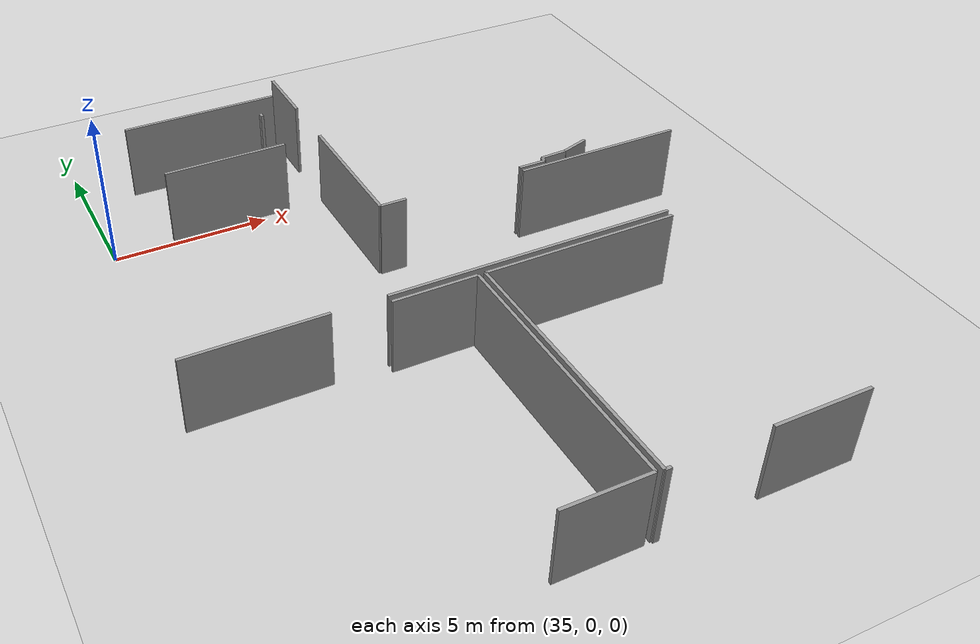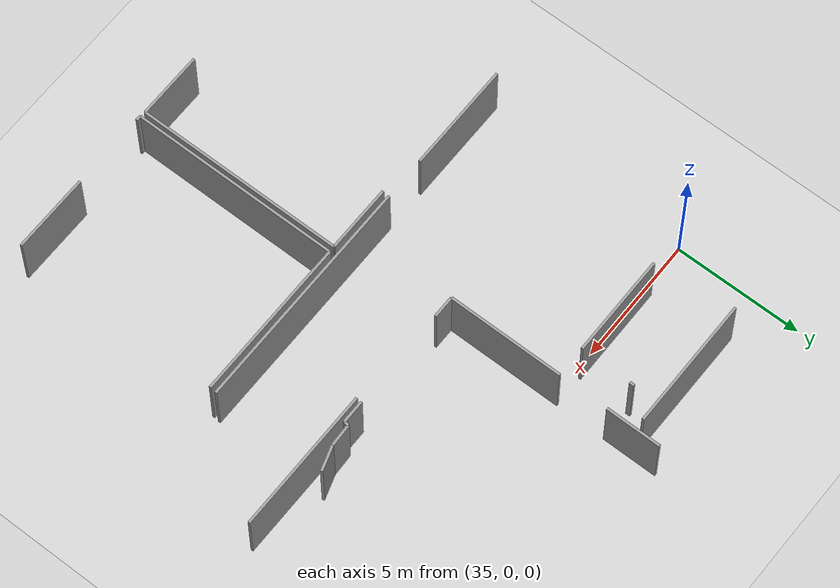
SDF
<sdf version="1.6">
 <world name="default">
  <model name="ground_plane">
   <static>1</static>
   <link name="link">
    <collision name="collision">
     <geometry><plane><normal>0 0 1</normal><size>100 100</size></plane></geometry>
     <surface><friction><ode><mu>100</mu><mu2>50</mu2></ode></friction></surface>
    </collision>
    <visual name="visual">
     <cast_shadows>0</cast_shadows>
     <geometry><plane><normal>0 0 1</normal><size>100 100</size></plane></geometry>
     <material>
      <script><uri>file://media/materials/scripts/gazebo.material</uri><name>Gazebo/Grey</name></script>
     </material>
    </visual>
   </link>
  </model>
  <model name="50041184">
   <static>1</static>
   <link name="Wall_160">
    <collision name="Wall_160_Collision">
     <geometry><box><size>0.902622174545 0.1 2.5</size></box></geometry>
     <pose>0.451311087273 0 1.25 0 0 0</pose>
    </collision>
    <visual name="Wall_160_Visual">
     <pose>0.451311087273 0 1.25 0 0 0</pose>
     <geometry><box><size>0.902622174545 0.1 2.5</size></box></geometry>
     <material>
      <script><uri>file://media/materials/scripts/gazebo.material</uri><name>Gazebo/Grey</name></script>
      <ambient>1 1 1 1</ambient>
     </material>
    </visual>
    <pose>119.448791108 -21.093683549 0 0 0 3.14159265359</pose>
   </link>
   <link name="Wall_161">
    <collision name="Wall_161_Collision">
     <geometry><box><size>0.860982220501 0.1 2.5</size></box></geometry>
     <pose>0.430491110251 0 1.25 0 0 0</pose>
    </collision>
    <visual name="Wall_161_Visual">
     <pose>0.430491110251 0 1.25 0 0 0</pose>
     <geometry><box><size>0.860982220501 0.1 2.5</size></box></geometry>
     <material>
      <script><uri>file://media/materials/scripts/gazebo.material</uri><name>Gazebo/Grey</name></script>
      <ambient>1 1 1 1</ambient>
     </material>
    </visual>
    <pose>114.612208885 -21.093683549 0 0 0 3.14159265359</pose>
   </link>
   <link name="Wall_162">
    <collision name="Wall_162_Collision">
     <geometry><box><size>4.53812023537 0.1 2.5</size></box></geometry>
     <pose>2.26906011768 0 1.25 0 0 0</pose>
    </collision>
    <visual name="Wall_162_Visual">
     <pose>2.26906011768 0 1.25 0 0 0</pose>
     <geometry><box><size>4.53812023537 0.1 2.5</size></box></geometry>
     <material>
      <script><uri>file://media/materials/scripts/gazebo.material</uri><name>Gazebo/Grey</name></script>
      <ambient>1 1 1 1</ambient>
     </material>
    </visual>
    <pose>113.751226665 -21.093683549 0 0 0 1.57079632679</pose>
   </link>
   <link name="Wall_163">
    <collision name="Wall_163_Collision">
     <geometry><box><size>2.155248475 0.1 2.5</size></box></geometry>
     <pose>1.0776242375 0 1.25 0 0 0</pose>
    </collision>
    <visual name="Wall_163_Visual">
     <pose>1.0776242375 0 1.25 0 0 0</pose>
     <geometry><box><size>2.155248475 0.1 2.5</size></box></geometry>
     <material>
      <script><uri>file://media/materials/scripts/gazebo.material</uri><name>Gazebo/Grey</name></script>
      <ambient>1 1 1 1</ambient>
     </material>
    </visual>
    <pose>113.751226665 -14.6185437442 0 0 0 1.57079632679</pose>
   </link>
   <link name="Wall_177">
    <collision name="Wall_177_Collision">
     <geometry><box><size>0.985058214441 0.1 2.5</size></box></geometry>
     <pose>0.492529107221 0 1.25 0 0 0</pose>
    </collision>
    <visual name="Wall_177_Visual">
     <pose>0.492529107221 0 1.25 0 0 0</pose>
     <geometry><box><size>0.985058214441 0.1 2.5</size></box></geometry>
     <material>
      <script><uri>file://media/materials/scripts/gazebo.material</uri><name>Gazebo/Grey</name></script>
      <ambient>1 1 1 1</ambient>
     </material>
    </visual>
    <pose>121.273078119 -20.5783891178 0 0 0 -2.83606306162</pose>
   </link>
   <link name="Wall_178">
    <collision name="Wall_178_Collision">
     <geometry><box><size>0.861356113387 0.1 2.5</size></box></geometry>
     <pose>0.430678056693 0 1.25 0 0 0</pose>
    </collision>
    <visual name="Wall_178_Visual">
     <pose>0.430678056693 0 1.25 0 0 0</pose>
     <geometry><box><size>0.861356113387 0.1 2.5</size></box></geometry>
     <material>
      <script><uri>file://media/materials/scripts/gazebo.material</uri><name>Gazebo/Grey</name></script>
      <ambient>1 1 1 1</ambient>
     </material>
    </visual>
    <pose>120.333640132 -20.8746929371 0 0 0 -3.10341062922</pose>
   </link>
   <link name="Wall_179">
    <collision name="Wall_179_Collision">
     <geometry><box><size>0.187666847445 0.1 2.5</size></box></geometry>
     <pose>0.0938334237224 0 1.25 0 0 0</pose>
    </collision>
    <visual name="Wall_179_Visual">
     <pose>0.0938334237224 0 1.25 0 0 0</pose>
     <geometry><box><size>0.187666847445 0.1 2.5</size></box></geometry>
     <material>
      <script><uri>file://media/materials/scripts/gazebo.material</uri><name>Gazebo/Grey</name></script>
      <ambient>1 1 1 1</ambient>
     </material>
    </visual>
    <pose>119.472911813 -20.9075732666 0 0 0 -1.69968225191</pose>
   </link>
   <link name="Wall_182">
    <collision name="Wall_182_Collision">
     <geometry><box><size>0.181413092465 0.1 2.5</size></box></geometry>
     <pose>0.0907065462324 0 1.25 0 0 0</pose>
    </collision>
    <visual name="Wall_182_Visual">
     <pose>0.0907065462324 0 1.25 0 0 0</pose>
     <geometry><box><size>0.181413092465 0.1 2.5</size></box></geometry>
     <material>
      <script><uri>file://media/materials/scripts/gazebo.material</uri><name>Gazebo/Grey</name></script>
      <ambient>1 1 1 1</ambient>
     </material>
    </visual>
    <pose>112.544048851 -14.410470925 0 0 0 -1.57079632679</pose>
   </link>
   <link name="Wall_183">
    <collision name="Wall_183_Collision">
     <geometry><box><size>3.97547567845 0.1 2.5</size></box></geometry>
     <pose>1.98773783923 0 1.25 0 0 0</pose>
    </collision>
    <visual name="Wall_183_Visual">
     <pose>1.98773783923 0 1.25 0 0 0</pose>
     <geometry><box><size>3.97547567845 0.1 2.5</size></box></geometry>
     <material>
      <script><uri>file://media/materials/scripts/gazebo.material</uri><name>Gazebo/Grey</name></script>
      <ambient>1 1 1 1</ambient>
     </material>
    </visual>
    <pose>112.544048851 -16.5583562374 0 0 0 -3.14044304528</pose>
   </link>
   <link name="Wall_184">
    <collision name="Wall_184_Collision">
     <geometry><box><size>5.12069873874 0.1 2.5</size></box></geometry>
     <pose>2.56034936937 0 1.25 0 0 0</pose>
    </collision>
    <visual name="Wall_184_Visual">
     <pose>2.56034936937 0 1.25 0 0 0</pose>
     <geometry><box><size>5.12069873874 0.1 2.5</size></box></geometry>
     <material>
      <script><uri>file://media/materials/scripts/gazebo.material</uri><name>Gazebo/Grey</name></script>
      <ambient>1 1 1 1</ambient>
     </material>
    </visual>
    <pose>113.336350537 -13.4598612425 0 0 0 3.14159265359</pose>
   </link>
   <link name="Wall_375">
    <collision name="Wall_375_Collision">
     <geometry><box><size>5.58076945049 0.1 2.5</size></box></geometry>
     <pose>2.79038472525 0 1.25 0 0 0</pose>
    </collision>
    <visual name="Wall_375_Visual">
     <pose>2.79038472525 0 1.25 0 0 0</pose>
     <geometry><box><size>5.58076945049 0.1 2.5</size></box></geometry>
     <material>
      <script><uri>file://media/materials/scripts/gazebo.material</uri><name>Gazebo/Grey</name></script>
      <ambient>1 1 1 1</ambient>
     </material>
    </visual>
    <pose>118.538551869 -21.3017563682 0 0 0 0.0</pose>
   </link>
   <link name="Wall_380">
    <collision name="Wall_380_Collision">
     <geometry><box><size>9.17272329108 0.1 2.5</size></box></geometry>
     <pose>4.58636164554 0 1.25 0 0 0</pose>
    </collision>
    <visual name="Wall_380_Visual">
     <pose>4.58636164554 0 1.25 0 0 0</pose>
     <geometry><box><size>9.17272329108 0.1 2.5</size></box></geometry>
     <material>
      <script><uri>file://media/materials/scripts/gazebo.material</uri><name>Gazebo/Grey</name></script>
      <ambient>1 1 1 1</ambient>
     </material>
    </visual>
    <pose>121.246418393 -25.0634438019 0 0 0 3.14159265359</pose>
   </link>
   <link name="Wall_381">
    <collision name="Wall_381_Collision">
     <geometry><box><size>4.26212858875 0.1 2.5</size></box></geometry>
     <pose>2.13106429437 0 1.25 0 0 0</pose>
    </collision>
    <visual name="Wall_381_Visual">
     <pose>2.13106429437 0 1.25 0 0 0</pose>
     <geometry><box><size>4.26212858875 0.1 2.5</size></box></geometry>
     <material>
      <script><uri>file://media/materials/scripts/gazebo.material</uri><name>Gazebo/Grey</name></script>
      <ambient>1 1 1 1</ambient>
     </material>
    </visual>
    <pose>110.409620353 -25.0634438019 0 0 0 3.14159265359</pose>
   </link>
   <link name="Wall_452">
    <collision name="Wall_452_Collision">
     <geometry><box><size>2.61100285005 0.1 2.5</size></box></geometry>
     <pose>1.30550142503 0 1.25 0 0 0</pose>
    </collision>
    <visual name="Wall_452_Visual">
     <pose>1.30550142503 0 1.25 0 0 0</pose>
     <geometry><box><size>2.61100285005 0.1 2.5</size></box></geometry>
     <material>
      <script><uri>file://media/materials/scripts/gazebo.material</uri><name>Gazebo/Grey</name></script>
      <ambient>1 1 1 1</ambient>
     </material>
    </visual>
    <pose>114.710088168 -33.5546936988 0 0 0 3.14159265359</pose>
   </link>
   <link name="Wall_456">
    <collision name="Wall_456_Collision">
     <geometry><box><size>2.6384242832 0.1 2.5</size></box></geometry>
     <pose>1.3192121416 0 1.25 0 0 0</pose>
    </collision>
    <visual name="Wall_456_Visual">
     <pose>1.3192121416 0 1.25 0 0 0</pose>
     <geometry><box><size>2.6384242832 0.1 2.5</size></box></geometry>
     <material>
      <script><uri>file://media/materials/scripts/gazebo.material</uri><name>Gazebo/Grey</name></script>
      <ambient>1 1 1 1</ambient>
     </material>
    </visual>
    <pose>112.062142553 -25.3334687478 0 0 0 0.0</pose>
   </link>
   <link name="Wall_457">
    <collision name="Wall_457_Collision">
     <geometry><box><size>8.22123046448 0.1 2.5</size></box></geometry>
     <pose>4.11061523224 0 1.25 0 0 0</pose>
    </collision>
    <visual name="Wall_457_Visual">
     <pose>4.11061523224 0 1.25 0 0 0</pose>
     <geometry><box><size>8.22123046448 0.1 2.5</size></box></geometry>
     <material>
      <script><uri>file://media/materials/scripts/gazebo.material</uri><name>Gazebo/Grey</name></script>
      <ambient>1 1 1 1</ambient>
     </material>
    </visual>
    <pose>114.700566837 -25.3334687478 0 0 0 -1.56963818713</pose>
   </link>
   <link name="Wall_459">
    <collision name="Wall_459_Collision">
     <geometry><box><size>3.04174786246 0.1 2.5</size></box></geometry>
     <pose>1.52087393123 0 1.25 0 0 0</pose>
    </collision>
    <visual name="Wall_459_Visual">
     <pose>1.52087393123 0 1.25 0 0 0</pose>
     <geometry><box><size>3.04174786246 0.1 2.5</size></box></geometry>
     <material>
      <script><uri>file://media/materials/scripts/gazebo.material</uri><name>Gazebo/Grey</name></script>
      <ambient>1 1 1 1</ambient>
     </material>
    </visual>
    <pose>121.1296234 -33.5892243924 0 0 0 3.14159265359</pose>
   </link>
   <link name="Wall_460">
    <collision name="Wall_460_Collision">
     <geometry><box><size>0.18877625507 0.1 2.5</size></box></geometry>
     <pose>0.0943881275351 0 1.25 0 0 0</pose>
    </collision>
    <visual name="Wall_460_Visual">
     <pose>0.0943881275351 0 1.25 0 0 0</pose>
     <geometry><box><size>0.18877625507 0.1 2.5</size></box></geometry>
     <material>
      <script><uri>file://media/materials/scripts/gazebo.material</uri><name>Gazebo/Grey</name></script>
      <ambient>1 1 1 1</ambient>
     </material>
    </visual>
    <pose>115.119378448 -33.5892243924 0 0 0 3.14159265359</pose>
   </link>
   <link name="Wall_461">
    <collision name="Wall_461_Collision">
     <geometry><box><size>8.26121454098 0.1 2.5</size></box></geometry>
     <pose>4.13060727049 0 1.25 0 0 0</pose>
    </collision>
    <visual name="Wall_461_Visual">
     <pose>4.13060727049 0 1.25 0 0 0</pose>
     <geometry><box><size>8.26121454098 0.1 2.5</size></box></geometry>
     <material>
      <script><uri>file://media/materials/scripts/gazebo.material</uri><name>Gazebo/Grey</name></script>
      <ambient>1 1 1 1</ambient>
     </material>
    </visual>
    <pose>114.930602192 -33.5892243924 0 0 0 1.57079632679</pose>
   </link>
   <link name="Wall_462">
    <collision name="Wall_462_Collision">
     <geometry><box><size>6.28788696276 0.1 2.5</size></box></geometry>
     <pose>3.14394348138 0 1.25 0 0 0</pose>
    </collision>
    <visual name="Wall_462_Visual">
     <pose>3.14394348138 0 1.25 0 0 0</pose>
     <geometry><box><size>6.28788696276 0.1 2.5</size></box></geometry>
     <material>
      <script><uri>file://media/materials/scripts/gazebo.material</uri><name>Gazebo/Grey</name></script>
      <ambient>1 1 1 1</ambient>
     </material>
    </visual>
    <pose>114.930602192 -25.3280098514 0 0 0 0.0</pose>
   </link>
   <pose>-71.6 16.80775925 0 0 0 0</pose>
  </model>
 </world>
</sdf>
